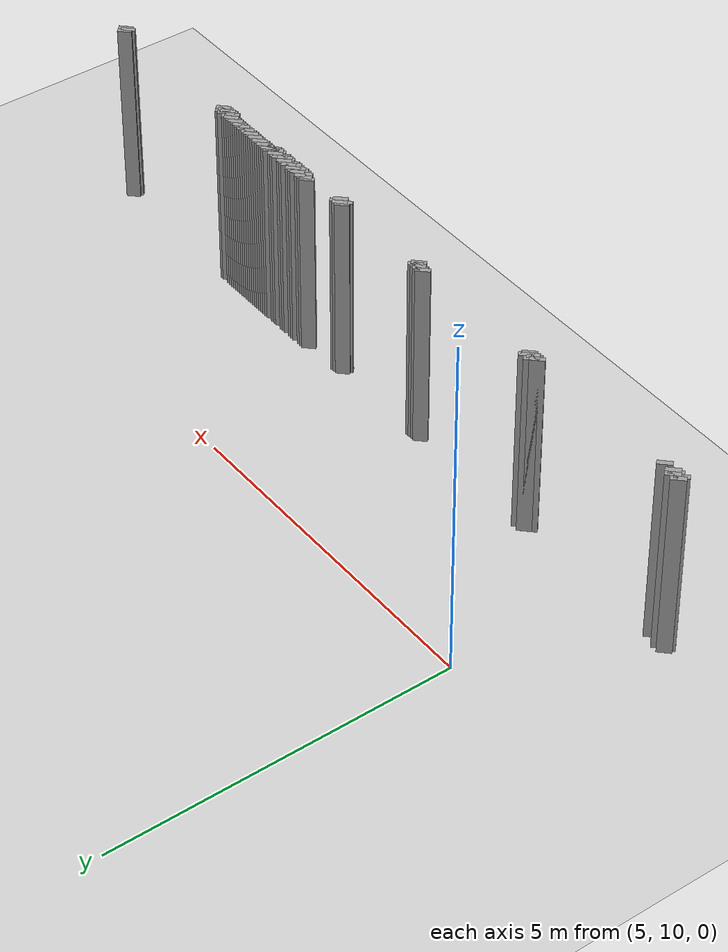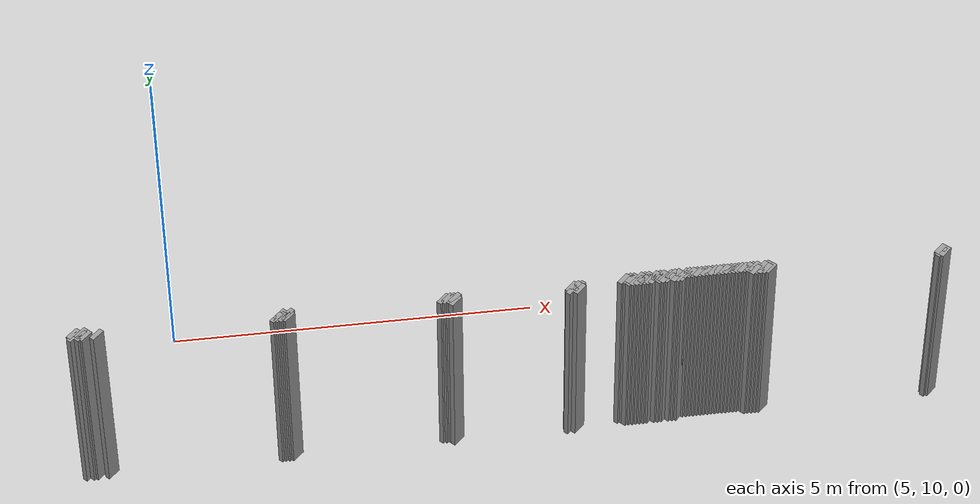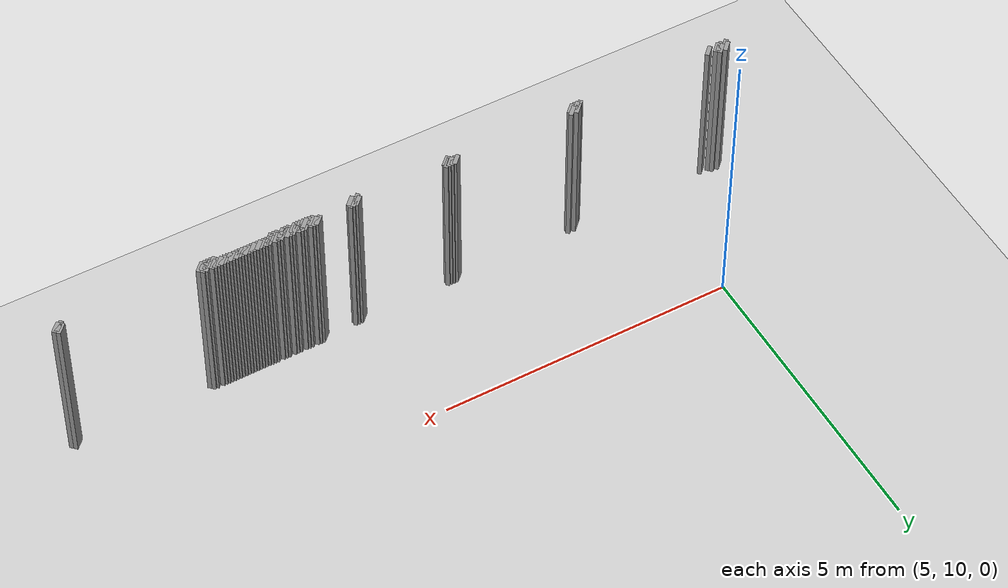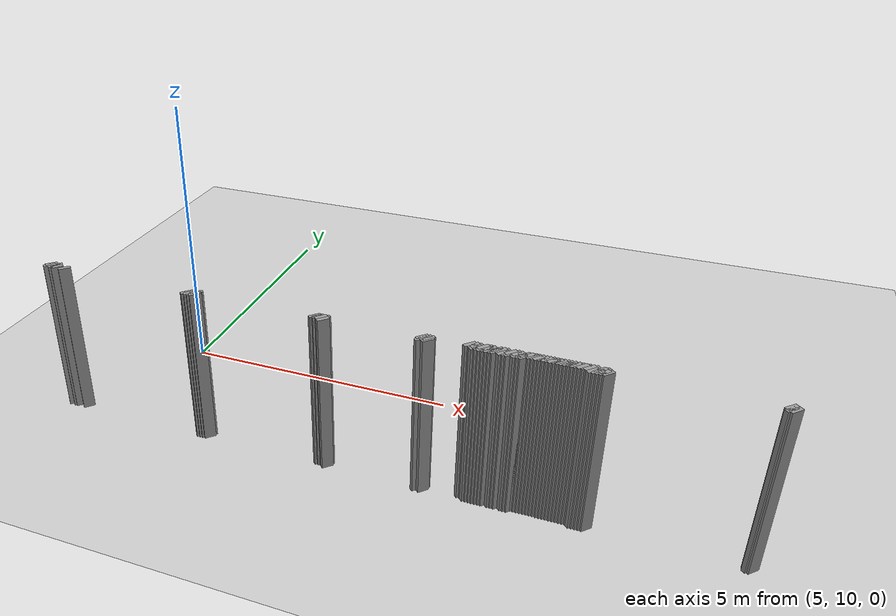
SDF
<sdf version="1.5">
 <world name="default">
  <include><uri>model://ground_plane</uri></include>
  <include><uri>model://sun</uri></include>
  <model name="grey_wall_1323">
   <static>1</static>
   <link name="link">
    <pose>10.95 7.8  1.4 0 0 -0.785398163397</pose>
    <collision name="collision"><geometry><box><size>0.0707106781187 .2  2.8</size></box></geometry></collision>
    <visual name="visual">
     <cast_shadows>0</cast_shadows>
     <geometry><box><size>0.0707106781187 .2  2.8</size></box></geometry>
     <material>
      <script>
       <uri>model://grey_wall/materials/scripts</uri>
       <uri>model://grey_wall/materials/textures</uri>
       <name>vrc/grey_wall</name>
      </script>
     </material>
    </visual>
   </link>
  </model>
  <model name="grey_wall_1324">
   <static>1</static>
   <link name="link">
    <pose>11.0 7.8  1.4 0 0 -0.785398163397</pose>
    <collision name="collision"><geometry><box><size>0.0707106781187 .2  2.8</size></box></geometry></collision>
    <visual name="visual">
     <cast_shadows>0</cast_shadows>
     <geometry><box><size>0.0707106781187 .2  2.8</size></box></geometry>
     <material>
      <script>
       <uri>model://grey_wall/materials/scripts</uri>
       <uri>model://grey_wall/materials/textures</uri>
       <name>vrc/grey_wall</name>
      </script>
     </material>
    </visual>
   </link>
  </model>
  <model name="grey_wall_1325">
   <static>1</static>
   <link name="link">
    <pose>11.05 7.8  1.4 0 0 -0.785398163397</pose>
    <collision name="collision"><geometry><box><size>0.0707106781187 .2  2.8</size></box></geometry></collision>
    <visual name="visual">
     <cast_shadows>0</cast_shadows>
     <geometry><box><size>0.0707106781187 .2  2.8</size></box></geometry>
     <material>
      <script>
       <uri>model://grey_wall/materials/scripts</uri>
       <uri>model://grey_wall/materials/textures</uri>
       <name>vrc/grey_wall</name>
      </script>
     </material>
    </visual>
   </link>
  </model>
  <model name="grey_wall_1326">
   <static>1</static>
   <link name="link">
    <pose>11.15 7.8  1.4 0 0 -0.785398163397</pose>
    <collision name="collision"><geometry><box><size>0.0707106781187 .2  2.8</size></box></geometry></collision>
    <visual name="visual">
     <cast_shadows>0</cast_shadows>
     <geometry><box><size>0.0707106781187 .2  2.8</size></box></geometry>
     <material>
      <script>
       <uri>model://grey_wall/materials/scripts</uri>
       <uri>model://grey_wall/materials/textures</uri>
       <name>vrc/grey_wall</name>
      </script>
     </material>
    </visual>
   </link>
  </model>
  <model name="grey_wall_1327">
   <static>1</static>
   <link name="link">
    <pose>11.2 7.8  1.4 0 0 -0.785398163397</pose>
    <collision name="collision"><geometry><box><size>0.0707106781187 .2  2.8</size></box></geometry></collision>
    <visual name="visual">
     <cast_shadows>0</cast_shadows>
     <geometry><box><size>0.0707106781187 .2  2.8</size></box></geometry>
     <material>
      <script>
       <uri>model://grey_wall/materials/scripts</uri>
       <uri>model://grey_wall/materials/textures</uri>
       <name>vrc/grey_wall</name>
      </script>
     </material>
    </visual>
   </link>
  </model>
  <model name="grey_wall_1328">
   <static>1</static>
   <link name="link">
    <pose>11.25 7.8  1.4 0 0 -0.785398163397</pose>
    <collision name="collision"><geometry><box><size>0.0707106781187 .2  2.8</size></box></geometry></collision>
    <visual name="visual">
     <cast_shadows>0</cast_shadows>
     <geometry><box><size>0.0707106781187 .2  2.8</size></box></geometry>
     <material>
      <script>
       <uri>model://grey_wall/materials/scripts</uri>
       <uri>model://grey_wall/materials/textures</uri>
       <name>vrc/grey_wall</name>
      </script>
     </material>
    </visual>
   </link>
  </model>
  <model name="grey_wall_1329">
   <static>1</static>
   <link name="link">
    <pose>11.35 7.8  1.4 0 0 -0.785398163397</pose>
    <collision name="collision"><geometry><box><size>0.0707106781187 .2  2.8</size></box></geometry></collision>
    <visual name="visual">
     <cast_shadows>0</cast_shadows>
     <geometry><box><size>0.0707106781187 .2  2.8</size></box></geometry>
     <material>
      <script>
       <uri>model://grey_wall/materials/scripts</uri>
       <uri>model://grey_wall/materials/textures</uri>
       <name>vrc/grey_wall</name>
      </script>
     </material>
    </visual>
   </link>
  </model>
  <model name="grey_wall_1330">
   <static>1</static>
   <link name="link">
    <pose>11.4 7.8  1.4 0 0 -0.785398163397</pose>
    <collision name="collision"><geometry><box><size>0.0707106781187 .2  2.8</size></box></geometry></collision>
    <visual name="visual">
     <cast_shadows>0</cast_shadows>
     <geometry><box><size>0.0707106781187 .2  2.8</size></box></geometry>
     <material>
      <script>
       <uri>model://grey_wall/materials/scripts</uri>
       <uri>model://grey_wall/materials/textures</uri>
       <name>vrc/grey_wall</name>
      </script>
     </material>
    </visual>
   </link>
  </model>
  <model name="grey_wall_1331">
   <static>1</static>
   <link name="link">
    <pose>11.45 7.8  1.4 0 0 -0.785398163397</pose>
    <collision name="collision"><geometry><box><size>0.0707106781187 .2  2.8</size></box></geometry></collision>
    <visual name="visual">
     <cast_shadows>0</cast_shadows>
     <geometry><box><size>0.0707106781187 .2  2.8</size></box></geometry>
     <material>
      <script>
       <uri>model://grey_wall/materials/scripts</uri>
       <uri>model://grey_wall/materials/textures</uri>
       <name>vrc/grey_wall</name>
      </script>
     </material>
    </visual>
   </link>
  </model>
  <model name="grey_wall_1332">
   <static>1</static>
   <link name="link">
    <pose>11.55 7.8  1.4 0 0 -0.785398163397</pose>
    <collision name="collision"><geometry><box><size>0.0707106781187 .2  2.8</size></box></geometry></collision>
    <visual name="visual">
     <cast_shadows>0</cast_shadows>
     <geometry><box><size>0.0707106781187 .2  2.8</size></box></geometry>
     <material>
      <script>
       <uri>model://grey_wall/materials/scripts</uri>
       <uri>model://grey_wall/materials/textures</uri>
       <name>vrc/grey_wall</name>
      </script>
     </material>
    </visual>
   </link>
  </model>
  <model name="grey_wall_1333">
   <static>1</static>
   <link name="link">
    <pose>11.6 7.8  1.4 0 0 -0.785398163397</pose>
    <collision name="collision"><geometry><box><size>0.0707106781187 .2  2.8</size></box></geometry></collision>
    <visual name="visual">
     <cast_shadows>0</cast_shadows>
     <geometry><box><size>0.0707106781187 .2  2.8</size></box></geometry>
     <material>
      <script>
       <uri>model://grey_wall/materials/scripts</uri>
       <uri>model://grey_wall/materials/textures</uri>
       <name>vrc/grey_wall</name>
      </script>
     </material>
    </visual>
   </link>
  </model>
  <model name="grey_wall_1334">
   <static>1</static>
   <link name="link">
    <pose>11.65 7.8  1.4 0 0 -0.785398163397</pose>
    <collision name="collision"><geometry><box><size>0.0707106781187 .2  2.8</size></box></geometry></collision>
    <visual name="visual">
     <cast_shadows>0</cast_shadows>
     <geometry><box><size>0.0707106781187 .2  2.8</size></box></geometry>
     <material>
      <script>
       <uri>model://grey_wall/materials/scripts</uri>
       <uri>model://grey_wall/materials/textures</uri>
       <name>vrc/grey_wall</name>
      </script>
     </material>
    </visual>
   </link>
  </model>
  <model name="grey_wall_1335">
   <static>1</static>
   <link name="link">
    <pose>11.75 7.8  1.4 0 0 -0.785398163397</pose>
    <collision name="collision"><geometry><box><size>0.0707106781187 .2  2.8</size></box></geometry></collision>
    <visual name="visual">
     <cast_shadows>0</cast_shadows>
     <geometry><box><size>0.0707106781187 .2  2.8</size></box></geometry>
     <material>
      <script>
       <uri>model://grey_wall/materials/scripts</uri>
       <uri>model://grey_wall/materials/textures</uri>
       <name>vrc/grey_wall</name>
      </script>
     </material>
    </visual>
   </link>
  </model>
  <model name="grey_wall_1336">
   <static>1</static>
   <link name="link">
    <pose>11.8 7.8  1.4 0 0 -0.785398163397</pose>
    <collision name="collision"><geometry><box><size>0.0707106781187 .2  2.8</size></box></geometry></collision>
    <visual name="visual">
     <cast_shadows>0</cast_shadows>
     <geometry><box><size>0.0707106781187 .2  2.8</size></box></geometry>
     <material>
      <script>
       <uri>model://grey_wall/materials/scripts</uri>
       <uri>model://grey_wall/materials/textures</uri>
       <name>vrc/grey_wall</name>
      </script>
     </material>
    </visual>
   </link>
  </model>
  <model name="grey_wall_1337">
   <static>1</static>
   <link name="link">
    <pose>11.85 7.8  1.4 0 0 -0.785398163397</pose>
    <collision name="collision"><geometry><box><size>0.0707106781187 .2  2.8</size></box></geometry></collision>
    <visual name="visual">
     <cast_shadows>0</cast_shadows>
     <geometry><box><size>0.0707106781187 .2  2.8</size></box></geometry>
     <material>
      <script>
       <uri>model://grey_wall/materials/scripts</uri>
       <uri>model://grey_wall/materials/textures</uri>
       <name>vrc/grey_wall</name>
      </script>
     </material>
    </visual>
   </link>
  </model>
  <model name="grey_wall_1338">
   <static>1</static>
   <link name="link">
    <pose>11.9 7.8  1.4 0 0 -0.785398163397</pose>
    <collision name="collision"><geometry><box><size>0.0707106781187 .2  2.8</size></box></geometry></collision>
    <visual name="visual">
     <cast_shadows>0</cast_shadows>
     <geometry><box><size>0.0707106781187 .2  2.8</size></box></geometry>
     <material>
      <script>
       <uri>model://grey_wall/materials/scripts</uri>
       <uri>model://grey_wall/materials/textures</uri>
       <name>vrc/grey_wall</name>
      </script>
     </material>
    </visual>
   </link>
  </model>
  <model name="grey_wall_1339">
   <static>1</static>
   <link name="link">
    <pose>11.95 7.8  1.4 0 0 -0.785398163397</pose>
    <collision name="collision"><geometry><box><size>0.0707106781187 .2  2.8</size></box></geometry></collision>
    <visual name="visual">
     <cast_shadows>0</cast_shadows>
     <geometry><box><size>0.0707106781187 .2  2.8</size></box></geometry>
     <material>
      <script>
       <uri>model://grey_wall/materials/scripts</uri>
       <uri>model://grey_wall/materials/textures</uri>
       <name>vrc/grey_wall</name>
      </script>
     </material>
    </visual>
   </link>
  </model>
  <model name="grey_wall_1340">
   <static>1</static>
   <link name="link">
    <pose>12.0 7.8  1.4 0 0 -0.785398163397</pose>
    <collision name="collision"><geometry><box><size>0.0707106781187 .2  2.8</size></box></geometry></collision>
    <visual name="visual">
     <cast_shadows>0</cast_shadows>
     <geometry><box><size>0.0707106781187 .2  2.8</size></box></geometry>
     <material>
      <script>
       <uri>model://grey_wall/materials/scripts</uri>
       <uri>model://grey_wall/materials/textures</uri>
       <name>vrc/grey_wall</name>
      </script>
     </material>
    </visual>
   </link>
  </model>
  <model name="grey_wall_1341">
   <static>1</static>
   <link name="link">
    <pose>12.05 7.8  1.4 0 0 -0.785398163397</pose>
    <collision name="collision"><geometry><box><size>0.0707106781187 .2  2.8</size></box></geometry></collision>
    <visual name="visual">
     <cast_shadows>0</cast_shadows>
     <geometry><box><size>0.0707106781187 .2  2.8</size></box></geometry>
     <material>
      <script>
       <uri>model://grey_wall/materials/scripts</uri>
       <uri>model://grey_wall/materials/textures</uri>
       <name>vrc/grey_wall</name>
      </script>
     </material>
    </visual>
   </link>
  </model>
  <model name="grey_wall_1342">
   <static>1</static>
   <link name="link">
    <pose>12.1 7.8  1.4 0 0 -0.785398163397</pose>
    <collision name="collision"><geometry><box><size>0.0707106781187 .2  2.8</size></box></geometry></collision>
    <visual name="visual">
     <cast_shadows>0</cast_shadows>
     <geometry><box><size>0.0707106781187 .2  2.8</size></box></geometry>
     <material>
      <script>
       <uri>model://grey_wall/materials/scripts</uri>
       <uri>model://grey_wall/materials/textures</uri>
       <name>vrc/grey_wall</name>
      </script>
     </material>
    </visual>
   </link>
  </model>
  <model name="grey_wall_1343">
   <static>1</static>
   <link name="link">
    <pose>12.15 7.8  1.4 0 0 -0.785398163397</pose>
    <collision name="collision"><geometry><box><size>0.0707106781187 .2  2.8</size></box></geometry></collision>
    <visual name="visual">
     <cast_shadows>0</cast_shadows>
     <geometry><box><size>0.0707106781187 .2  2.8</size></box></geometry>
     <material>
      <script>
       <uri>model://grey_wall/materials/scripts</uri>
       <uri>model://grey_wall/materials/textures</uri>
       <name>vrc/grey_wall</name>
      </script>
     </material>
    </visual>
   </link>
  </model>
  <model name="grey_wall_1344">
   <static>1</static>
   <link name="link">
    <pose>12.2 7.8  1.4 0 0 -0.785398163397</pose>
    <collision name="collision"><geometry><box><size>0.0707106781187 .2  2.8</size></box></geometry></collision>
    <visual name="visual">
     <cast_shadows>0</cast_shadows>
     <geometry><box><size>0.0707106781187 .2  2.8</size></box></geometry>
     <material>
      <script>
       <uri>model://grey_wall/materials/scripts</uri>
       <uri>model://grey_wall/materials/textures</uri>
       <name>vrc/grey_wall</name>
      </script>
     </material>
    </visual>
   </link>
  </model>
  <model name="grey_wall_1345">
   <static>1</static>
   <link name="link">
    <pose>12.25 7.8  1.4 0 0 -0.785398163397</pose>
    <collision name="collision"><geometry><box><size>0.0707106781187 .2  2.8</size></box></geometry></collision>
    <visual name="visual">
     <cast_shadows>0</cast_shadows>
     <geometry><box><size>0.0707106781187 .2  2.8</size></box></geometry>
     <material>
      <script>
       <uri>model://grey_wall/materials/scripts</uri>
       <uri>model://grey_wall/materials/textures</uri>
       <name>vrc/grey_wall</name>
      </script>
     </material>
    </visual>
   </link>
  </model>
  <model name="grey_wall_1346">
   <static>1</static>
   <link name="link">
    <pose>12.3 7.8  1.4 0 0 -0.785398163397</pose>
    <collision name="collision"><geometry><box><size>0.0707106781187 .2  2.8</size></box></geometry></collision>
    <visual name="visual">
     <cast_shadows>0</cast_shadows>
     <geometry><box><size>0.0707106781187 .2  2.8</size></box></geometry>
     <material>
      <script>
       <uri>model://grey_wall/materials/scripts</uri>
       <uri>model://grey_wall/materials/textures</uri>
       <name>vrc/grey_wall</name>
      </script>
     </material>
    </visual>
   </link>
  </model>
  <model name="grey_wall_1347">
   <static>1</static>
   <link name="link">
    <pose>12.35 7.8  1.4 0 0 -0.785398163397</pose>
    <collision name="collision"><geometry><box><size>0.0707106781187 .2  2.8</size></box></geometry></collision>
    <visual name="visual">
     <cast_shadows>0</cast_shadows>
     <geometry><box><size>0.0707106781187 .2  2.8</size></box></geometry>
     <material>
      <script>
       <uri>model://grey_wall/materials/scripts</uri>
       <uri>model://grey_wall/materials/textures</uri>
       <name>vrc/grey_wall</name>
      </script>
     </material>
    </visual>
   </link>
  </model>
  <model name="grey_wall_1348">
   <static>1</static>
   <link name="link">
    <pose>12.4 7.8  1.4 0 0 -0.785398163397</pose>
    <collision name="collision"><geometry><box><size>0.0707106781187 .2  2.8</size></box></geometry></collision>
    <visual name="visual">
     <cast_shadows>0</cast_shadows>
     <geometry><box><size>0.0707106781187 .2  2.8</size></box></geometry>
     <material>
      <script>
       <uri>model://grey_wall/materials/scripts</uri>
       <uri>model://grey_wall/materials/textures</uri>
       <name>vrc/grey_wall</name>
      </script>
     </material>
    </visual>
   </link>
  </model>
  <model name="grey_wall_1349">
   <static>1</static>
   <link name="link">
    <pose>12.45 7.8  1.4 0 0 -0.785398163397</pose>
    <collision name="collision"><geometry><box><size>0.0707106781187 .2  2.8</size></box></geometry></collision>
    <visual name="visual">
     <cast_shadows>0</cast_shadows>
     <geometry><box><size>0.0707106781187 .2  2.8</size></box></geometry>
     <material>
      <script>
       <uri>model://grey_wall/materials/scripts</uri>
       <uri>model://grey_wall/materials/textures</uri>
       <name>vrc/grey_wall</name>
      </script>
     </material>
    </visual>
   </link>
  </model>
  <model name="grey_wall_1350">
   <static>1</static>
   <link name="link">
    <pose>12.5 7.8  1.4 0 0 -0.785398163397</pose>
    <collision name="collision"><geometry><box><size>0.0707106781187 .2  2.8</size></box></geometry></collision>
    <visual name="visual">
     <cast_shadows>0</cast_shadows>
     <geometry><box><size>0.0707106781187 .2  2.8</size></box></geometry>
     <material>
      <script>
       <uri>model://grey_wall/materials/scripts</uri>
       <uri>model://grey_wall/materials/textures</uri>
       <name>vrc/grey_wall</name>
      </script>
     </material>
    </visual>
   </link>
  </model>
  <model name="grey_wall_1351">
   <static>1</static>
   <link name="link">
    <pose>12.55 7.8  1.4 0 0 -0.785398163397</pose>
    <collision name="collision"><geometry><box><size>0.0707106781187 .2  2.8</size></box></geometry></collision>
    <visual name="visual">
     <cast_shadows>0</cast_shadows>
     <geometry><box><size>0.0707106781187 .2  2.8</size></box></geometry>
     <material>
      <script>
       <uri>model://grey_wall/materials/scripts</uri>
       <uri>model://grey_wall/materials/textures</uri>
       <name>vrc/grey_wall</name>
      </script>
     </material>
    </visual>
   </link>
  </model>
  <model name="grey_wall_1352">
   <static>1</static>
   <link name="link">
    <pose>12.6 7.8  1.4 0 0 -0.785398163397</pose>
    <collision name="collision"><geometry><box><size>0.0707106781187 .2  2.8</size></box></geometry></collision>
    <visual name="visual">
     <cast_shadows>0</cast_shadows>
     <geometry><box><size>0.0707106781187 .2  2.8</size></box></geometry>
     <material>
      <script>
       <uri>model://grey_wall/materials/scripts</uri>
       <uri>model://grey_wall/materials/textures</uri>
       <name>vrc/grey_wall</name>
      </script>
     </material>
    </visual>
   </link>
  </model>
  <model name="grey_wall_1353">
   <static>1</static>
   <link name="link">
    <pose>12.65 7.8  1.4 0 0 -0.785398163397</pose>
    <collision name="collision"><geometry><box><size>0.0707106781187 .2  2.8</size></box></geometry></collision>
    <visual name="visual">
     <cast_shadows>0</cast_shadows>
     <geometry><box><size>0.0707106781187 .2  2.8</size></box></geometry>
     <material>
      <script>
       <uri>model://grey_wall/materials/scripts</uri>
       <uri>model://grey_wall/materials/textures</uri>
       <name>vrc/grey_wall</name>
      </script>
     </material>
    </visual>
   </link>
  </model>
  <model name="grey_wall_1354">
   <static>1</static>
   <link name="link">
    <pose>12.7 7.8  1.4 0 0 -0.785398163397</pose>
    <collision name="collision"><geometry><box><size>0.0707106781187 .2  2.8</size></box></geometry></collision>
    <visual name="visual">
     <cast_shadows>0</cast_shadows>
     <geometry><box><size>0.0707106781187 .2  2.8</size></box></geometry>
     <material>
      <script>
       <uri>model://grey_wall/materials/scripts</uri>
       <uri>model://grey_wall/materials/textures</uri>
       <name>vrc/grey_wall</name>
      </script>
     </material>
    </visual>
   </link>
  </model>
  <model name="grey_wall_1355">
   <static>1</static>
   <link name="link">
    <pose>12.8 7.8  1.4 0 0 -0.785398163397</pose>
    <collision name="collision"><geometry><box><size>0.0707106781187 .2  2.8</size></box></geometry></collision>
    <visual name="visual">
     <cast_shadows>0</cast_shadows>
     <geometry><box><size>0.0707106781187 .2  2.8</size></box></geometry>
     <material>
      <script>
       <uri>model://grey_wall/materials/scripts</uri>
       <uri>model://grey_wall/materials/textures</uri>
       <name>vrc/grey_wall</name>
      </script>
     </material>
    </visual>
   </link>
  </model>
  <model name="grey_wall_1356">
   <static>1</static>
   <link name="link">
    <pose>12.85 7.8  1.4 0 0 -0.785398163397</pose>
    <collision name="collision"><geometry><box><size>0.0707106781187 .2  2.8</size></box></geometry></collision>
    <visual name="visual">
     <cast_shadows>0</cast_shadows>
     <geometry><box><size>0.0707106781187 .2  2.8</size></box></geometry>
     <material>
      <script>
       <uri>model://grey_wall/materials/scripts</uri>
       <uri>model://grey_wall/materials/textures</uri>
       <name>vrc/grey_wall</name>
      </script>
     </material>
    </visual>
   </link>
  </model>
  <model name="grey_wall_1357">
   <static>1</static>
   <link name="link">
    <pose>15.2 7.8  1.4 0 0 -0.785398163397</pose>
    <collision name="collision"><geometry><box><size>0.0707106781187 .2  2.8</size></box></geometry></collision>
    <visual name="visual">
     <cast_shadows>0</cast_shadows>
     <geometry><box><size>0.0707106781187 .2  2.8</size></box></geometry>
     <material>
      <script>
       <uri>model://grey_wall/materials/scripts</uri>
       <uri>model://grey_wall/materials/textures</uri>
       <name>vrc/grey_wall</name>
      </script>
     </material>
    </visual>
   </link>
  </model>
  <model name="grey_wall_1358">
   <static>1</static>
   <link name="link">
    <pose>3.7 7.75  1.4 0 0 -0.785398163397</pose>
    <collision name="collision"><geometry><box><size>0.0707106781187 .2  2.8</size></box></geometry></collision>
    <visual name="visual">
     <cast_shadows>0</cast_shadows>
     <geometry><box><size>0.0707106781187 .2  2.8</size></box></geometry>
     <material>
      <script>
       <uri>model://grey_wall/materials/scripts</uri>
       <uri>model://grey_wall/materials/textures</uri>
       <name>vrc/grey_wall</name>
      </script>
     </material>
    </visual>
   </link>
  </model>
  <model name="grey_wall_1359">
   <static>1</static>
   <link name="link">
    <pose>3.8 7.75  1.4 0 0 -0.785398163397</pose>
    <collision name="collision"><geometry><box><size>0.0707106781187 .2  2.8</size></box></geometry></collision>
    <visual name="visual">
     <cast_shadows>0</cast_shadows>
     <geometry><box><size>0.0707106781187 .2  2.8</size></box></geometry>
     <material>
      <script>
       <uri>model://grey_wall/materials/scripts</uri>
       <uri>model://grey_wall/materials/textures</uri>
       <name>vrc/grey_wall</name>
      </script>
     </material>
    </visual>
   </link>
  </model>
  <model name="grey_wall_1360">
   <static>1</static>
   <link name="link">
    <pose>6.4 7.75  1.4 0 0 -0.785398163397</pose>
    <collision name="collision"><geometry><box><size>0.0707106781187 .2  2.8</size></box></geometry></collision>
    <visual name="visual">
     <cast_shadows>0</cast_shadows>
     <geometry><box><size>0.0707106781187 .2  2.8</size></box></geometry>
     <material>
      <script>
       <uri>model://grey_wall/materials/scripts</uri>
       <uri>model://grey_wall/materials/textures</uri>
       <name>vrc/grey_wall</name>
      </script>
     </material>
    </visual>
   </link>
  </model>
  <model name="grey_wall_1361">
   <static>1</static>
   <link name="link">
    <pose>6.5 7.75  1.4 0 0 -0.785398163397</pose>
    <collision name="collision"><geometry><box><size>0.0707106781187 .2  2.8</size></box></geometry></collision>
    <visual name="visual">
     <cast_shadows>0</cast_shadows>
     <geometry><box><size>0.0707106781187 .2  2.8</size></box></geometry>
     <material>
      <script>
       <uri>model://grey_wall/materials/scripts</uri>
       <uri>model://grey_wall/materials/textures</uri>
       <name>vrc/grey_wall</name>
      </script>
     </material>
    </visual>
   </link>
  </model>
  <model name="grey_wall_1362">
   <static>1</static>
   <link name="link">
    <pose>8.55 7.75  1.4 0 0 -0.785398163397</pose>
    <collision name="collision"><geometry><box><size>0.0707106781187 .2  2.8</size></box></geometry></collision>
    <visual name="visual">
     <cast_shadows>0</cast_shadows>
     <geometry><box><size>0.0707106781187 .2  2.8</size></box></geometry>
     <material>
      <script>
       <uri>model://grey_wall/materials/scripts</uri>
       <uri>model://grey_wall/materials/textures</uri>
       <name>vrc/grey_wall</name>
      </script>
     </material>
    </visual>
   </link>
  </model>
  <model name="grey_wall_1363">
   <static>1</static>
   <link name="link">
    <pose>8.6 7.75  1.4 0 0 -0.785398163397</pose>
    <collision name="collision"><geometry><box><size>0.0707106781187 .2  2.8</size></box></geometry></collision>
    <visual name="visual">
     <cast_shadows>0</cast_shadows>
     <geometry><box><size>0.0707106781187 .2  2.8</size></box></geometry>
     <material>
      <script>
       <uri>model://grey_wall/materials/scripts</uri>
       <uri>model://grey_wall/materials/textures</uri>
       <name>vrc/grey_wall</name>
      </script>
     </material>
    </visual>
   </link>
  </model>
  <model name="grey_wall_1364">
   <static>1</static>
   <link name="link">
    <pose>8.65 7.75  1.4 0 0 -0.785398163397</pose>
    <collision name="collision"><geometry><box><size>0.0707106781187 .2  2.8</size></box></geometry></collision>
    <visual name="visual">
     <cast_shadows>0</cast_shadows>
     <geometry><box><size>0.0707106781187 .2  2.8</size></box></geometry>
     <material>
      <script>
       <uri>model://grey_wall/materials/scripts</uri>
       <uri>model://grey_wall/materials/textures</uri>
       <name>vrc/grey_wall</name>
      </script>
     </material>
    </visual>
   </link>
  </model>
  <model name="grey_wall_1365">
   <static>1</static>
   <link name="link">
    <pose>8.7 7.75  1.4 0 0 -0.785398163397</pose>
    <collision name="collision"><geometry><box><size>0.0707106781187 .2  2.8</size></box></geometry></collision>
    <visual name="visual">
     <cast_shadows>0</cast_shadows>
     <geometry><box><size>0.0707106781187 .2  2.8</size></box></geometry>
     <material>
      <script>
       <uri>model://grey_wall/materials/scripts</uri>
       <uri>model://grey_wall/materials/textures</uri>
       <name>vrc/grey_wall</name>
      </script>
     </material>
    </visual>
   </link>
  </model>
  <model name="grey_wall_1366">
   <static>1</static>
   <link name="link">
    <pose>10.25 7.75  1.4 0 0 -0.785398163397</pose>
    <collision name="collision"><geometry><box><size>0.0707106781187 .2  2.8</size></box></geometry></collision>
    <visual name="visual">
     <cast_shadows>0</cast_shadows>
     <geometry><box><size>0.0707106781187 .2  2.8</size></box></geometry>
     <material>
      <script>
       <uri>model://grey_wall/materials/scripts</uri>
       <uri>model://grey_wall/materials/textures</uri>
       <name>vrc/grey_wall</name>
      </script>
     </material>
    </visual>
   </link>
  </model>
  <model name="grey_wall_1367">
   <static>1</static>
   <link name="link">
    <pose>10.3 7.75  1.4 0 0 -0.785398163397</pose>
    <collision name="collision"><geometry><box><size>0.0707106781187 .2  2.8</size></box></geometry></collision>
    <visual name="visual">
     <cast_shadows>0</cast_shadows>
     <geometry><box><size>0.0707106781187 .2  2.8</size></box></geometry>
     <material>
      <script>
       <uri>model://grey_wall/materials/scripts</uri>
       <uri>model://grey_wall/materials/textures</uri>
       <name>vrc/grey_wall</name>
      </script>
     </material>
    </visual>
   </link>
  </model>
  <model name="grey_wall_1368">
   <static>1</static>
   <link name="link">
    <pose>10.35 7.75  1.4 0 0 -0.785398163397</pose>
    <collision name="collision"><geometry><box><size>0.0707106781187 .2  2.8</size></box></geometry></collision>
    <visual name="visual">
     <cast_shadows>0</cast_shadows>
     <geometry><box><size>0.0707106781187 .2  2.8</size></box></geometry>
     <material>
      <script>
       <uri>model://grey_wall/materials/scripts</uri>
       <uri>model://grey_wall/materials/textures</uri>
       <name>vrc/grey_wall</name>
      </script>
     </material>
    </visual>
   </link>
  </model>
  <model name="grey_wall_1369">
   <static>1</static>
   <link name="link">
    <pose>11.05 7.75  1.4 0 0 -0.785398163397</pose>
    <collision name="collision"><geometry><box><size>0.0707106781187 .2  2.8</size></box></geometry></collision>
    <visual name="visual">
     <cast_shadows>0</cast_shadows>
     <geometry><box><size>0.0707106781187 .2  2.8</size></box></geometry>
     <material>
      <script>
       <uri>model://grey_wall/materials/scripts</uri>
       <uri>model://grey_wall/materials/textures</uri>
       <name>vrc/grey_wall</name>
      </script>
     </material>
    </visual>
   </link>
  </model>
  <model name="grey_wall_1370">
   <static>1</static>
   <link name="link">
    <pose>11.1 7.75  1.4 0 0 -0.785398163397</pose>
    <collision name="collision"><geometry><box><size>0.0707106781187 .2  2.8</size></box></geometry></collision>
    <visual name="visual">
     <cast_shadows>0</cast_shadows>
     <geometry><box><size>0.0707106781187 .2  2.8</size></box></geometry>
     <material>
      <script>
       <uri>model://grey_wall/materials/scripts</uri>
       <uri>model://grey_wall/materials/textures</uri>
       <name>vrc/grey_wall</name>
      </script>
     </material>
    </visual>
   </link>
  </model>
  <model name="grey_wall_1371">
   <static>1</static>
   <link name="link">
    <pose>11.15 7.75  1.4 0 0 -0.785398163397</pose>
    <collision name="collision"><geometry><box><size>0.0707106781187 .2  2.8</size></box></geometry></collision>
    <visual name="visual">
     <cast_shadows>0</cast_shadows>
     <geometry><box><size>0.0707106781187 .2  2.8</size></box></geometry>
     <material>
      <script>
       <uri>model://grey_wall/materials/scripts</uri>
       <uri>model://grey_wall/materials/textures</uri>
       <name>vrc/grey_wall</name>
      </script>
     </material>
    </visual>
   </link>
  </model>
  <model name="grey_wall_1372">
   <static>1</static>
   <link name="link">
    <pose>11.2 7.75  1.4 0 0 -0.785398163397</pose>
    <collision name="collision"><geometry><box><size>0.0707106781187 .2  2.8</size></box></geometry></collision>
    <visual name="visual">
     <cast_shadows>0</cast_shadows>
     <geometry><box><size>0.0707106781187 .2  2.8</size></box></geometry>
     <material>
      <script>
       <uri>model://grey_wall/materials/scripts</uri>
       <uri>model://grey_wall/materials/textures</uri>
       <name>vrc/grey_wall</name>
      </script>
     </material>
    </visual>
   </link>
  </model>
  <model name="grey_wall_1373">
   <static>1</static>
   <link name="link">
    <pose>11.25 7.75  1.4 0 0 -0.785398163397</pose>
    <collision name="collision"><geometry><box><size>0.0707106781187 .2  2.8</size></box></geometry></collision>
    <visual name="visual">
     <cast_shadows>0</cast_shadows>
     <geometry><box><size>0.0707106781187 .2  2.8</size></box></geometry>
     <material>
      <script>
       <uri>model://grey_wall/materials/scripts</uri>
       <uri>model://grey_wall/materials/textures</uri>
       <name>vrc/grey_wall</name>
      </script>
     </material>
    </visual>
   </link>
  </model>
  <model name="grey_wall_1374">
   <static>1</static>
   <link name="link">
    <pose>11.3 7.75  1.4 0 0 -0.785398163397</pose>
    <collision name="collision"><geometry><box><size>0.0707106781187 .2  2.8</size></box></geometry></collision>
    <visual name="visual">
     <cast_shadows>0</cast_shadows>
     <geometry><box><size>0.0707106781187 .2  2.8</size></box></geometry>
     <material>
      <script>
       <uri>model://grey_wall/materials/scripts</uri>
       <uri>model://grey_wall/materials/textures</uri>
       <name>vrc/grey_wall</name>
      </script>
     </material>
    </visual>
   </link>
  </model>
  <model name="grey_wall_1375">
   <static>1</static>
   <link name="link">
    <pose>11.35 7.75  1.4 0 0 -0.785398163397</pose>
    <collision name="collision"><geometry><box><size>0.0707106781187 .2  2.8</size></box></geometry></collision>
    <visual name="visual">
     <cast_shadows>0</cast_shadows>
     <geometry><box><size>0.0707106781187 .2  2.8</size></box></geometry>
     <material>
      <script>
       <uri>model://grey_wall/materials/scripts</uri>
       <uri>model://grey_wall/materials/textures</uri>
       <name>vrc/grey_wall</name>
      </script>
     </material>
    </visual>
   </link>
  </model>
  <model name="grey_wall_1376">
   <static>1</static>
   <link name="link">
    <pose>11.45 7.75  1.4 0 0 -0.785398163397</pose>
    <collision name="collision"><geometry><box><size>0.0707106781187 .2  2.8</size></box></geometry></collision>
    <visual name="visual">
     <cast_shadows>0</cast_shadows>
     <geometry><box><size>0.0707106781187 .2  2.8</size></box></geometry>
     <material>
      <script>
       <uri>model://grey_wall/materials/scripts</uri>
       <uri>model://grey_wall/materials/textures</uri>
       <name>vrc/grey_wall</name>
      </script>
     </material>
    </visual>
   </link>
  </model>
  <model name="grey_wall_1377">
   <static>1</static>
   <link name="link">
    <pose>11.5 7.75  1.4 0 0 -0.785398163397</pose>
    <collision name="collision"><geometry><box><size>0.0707106781187 .2  2.8</size></box></geometry></collision>
    <visual name="visual">
     <cast_shadows>0</cast_shadows>
     <geometry><box><size>0.0707106781187 .2  2.8</size></box></geometry>
     <material>
      <script>
       <uri>model://grey_wall/materials/scripts</uri>
       <uri>model://grey_wall/materials/textures</uri>
       <name>vrc/grey_wall</name>
      </script>
     </material>
    </visual>
   </link>
  </model>
  <model name="grey_wall_1378">
   <static>1</static>
   <link name="link">
    <pose>11.55 7.75  1.4 0 0 -0.785398163397</pose>
    <collision name="collision"><geometry><box><size>0.0707106781187 .2  2.8</size></box></geometry></collision>
    <visual name="visual">
     <cast_shadows>0</cast_shadows>
     <geometry><box><size>0.0707106781187 .2  2.8</size></box></geometry>
     <material>
      <script>
       <uri>model://grey_wall/materials/scripts</uri>
       <uri>model://grey_wall/materials/textures</uri>
       <name>vrc/grey_wall</name>
      </script>
     </material>
    </visual>
   </link>
  </model>
  <model name="grey_wall_1379">
   <static>1</static>
   <link name="link">
    <pose>11.65 7.75  1.4 0 0 -0.785398163397</pose>
    <collision name="collision"><geometry><box><size>0.0707106781187 .2  2.8</size></box></geometry></collision>
    <visual name="visual">
     <cast_shadows>0</cast_shadows>
     <geometry><box><size>0.0707106781187 .2  2.8</size></box></geometry>
     <material>
      <script>
       <uri>model://grey_wall/materials/scripts</uri>
       <uri>model://grey_wall/materials/textures</uri>
       <name>vrc/grey_wall</name>
      </script>
     </material>
    </visual>
   </link>
  </model>
  <model name="grey_wall_1380">
   <static>1</static>
   <link name="link">
    <pose>11.7 7.75  1.4 0 0 -0.785398163397</pose>
    <collision name="collision"><geometry><box><size>0.0707106781187 .2  2.8</size></box></geometry></collision>
    <visual name="visual">
     <cast_shadows>0</cast_shadows>
     <geometry><box><size>0.0707106781187 .2  2.8</size></box></geometry>
     <material>
      <script>
       <uri>model://grey_wall/materials/scripts</uri>
       <uri>model://grey_wall/materials/textures</uri>
       <name>vrc/grey_wall</name>
      </script>
     </material>
    </visual>
   </link>
  </model>
  <model name="grey_wall_1381">
   <static>1</static>
   <link name="link">
    <pose>11.75 7.75  1.4 0 0 -0.785398163397</pose>
    <collision name="collision"><geometry><box><size>0.0707106781187 .2  2.8</size></box></geometry></collision>
    <visual name="visual">
     <cast_shadows>0</cast_shadows>
     <geometry><box><size>0.0707106781187 .2  2.8</size></box></geometry>
     <material>
      <script>
       <uri>model://grey_wall/materials/scripts</uri>
       <uri>model://grey_wall/materials/textures</uri>
       <name>vrc/grey_wall</name>
      </script>
     </material>
    </visual>
   </link>
  </model>
  <model name="grey_wall_1382">
   <static>1</static>
   <link name="link">
    <pose>12.7 7.75  1.4 0 0 -0.785398163397</pose>
    <collision name="collision"><geometry><box><size>0.0707106781187 .2  2.8</size></box></geometry></collision>
    <visual name="visual">
     <cast_shadows>0</cast_shadows>
     <geometry><box><size>0.0707106781187 .2  2.8</size></box></geometry>
     <material>
      <script>
       <uri>model://grey_wall/materials/scripts</uri>
       <uri>model://grey_wall/materials/textures</uri>
       <name>vrc/grey_wall</name>
      </script>
     </material>
    </visual>
   </link>
  </model>
  <model name="grey_wall_1383">
   <static>1</static>
   <link name="link">
    <pose>12.75 7.75  1.4 0 0 -0.785398163397</pose>
    <collision name="collision"><geometry><box><size>0.0707106781187 .2  2.8</size></box></geometry></collision>
    <visual name="visual">
     <cast_shadows>0</cast_shadows>
     <geometry><box><size>0.0707106781187 .2  2.8</size></box></geometry>
     <material>
      <script>
       <uri>model://grey_wall/materials/scripts</uri>
       <uri>model://grey_wall/materials/textures</uri>
       <name>vrc/grey_wall</name>
      </script>
     </material>
    </visual>
   </link>
  </model>
  <model name="grey_wall_1384">
   <static>1</static>
   <link name="link">
    <pose>12.8 7.75  1.4 0 0 -0.785398163397</pose>
    <collision name="collision"><geometry><box><size>0.0707106781187 .2  2.8</size></box></geometry></collision>
    <visual name="visual">
     <cast_shadows>0</cast_shadows>
     <geometry><box><size>0.0707106781187 .2  2.8</size></box></geometry>
     <material>
      <script>
       <uri>model://grey_wall/materials/scripts</uri>
       <uri>model://grey_wall/materials/textures</uri>
       <name>vrc/grey_wall</name>
      </script>
     </material>
    </visual>
   </link>
  </model>
  <model name="grey_wall_1385">
   <static>1</static>
   <link name="link">
    <pose>12.85 7.75  1.4 0 0 -0.785398163397</pose>
    <collision name="collision"><geometry><box><size>0.0707106781187 .2  2.8</size></box></geometry></collision>
    <visual name="visual">
     <cast_shadows>0</cast_shadows>
     <geometry><box><size>0.0707106781187 .2  2.8</size></box></geometry>
     <material>
      <script>
       <uri>model://grey_wall/materials/scripts</uri>
       <uri>model://grey_wall/materials/textures</uri>
       <name>vrc/grey_wall</name>
      </script>
     </material>
    </visual>
   </link>
  </model>
  <model name="grey_wall_1386">
   <static>1</static>
   <link name="link">
    <pose>12.9 7.75  1.4 0 0 -0.785398163397</pose>
    <collision name="collision"><geometry><box><size>0.0707106781187 .2  2.8</size></box></geometry></collision>
    <visual name="visual">
     <cast_shadows>0</cast_shadows>
     <geometry><box><size>0.0707106781187 .2  2.8</size></box></geometry>
     <material>
      <script>
       <uri>model://grey_wall/materials/scripts</uri>
       <uri>model://grey_wall/materials/textures</uri>
       <name>vrc/grey_wall</name>
      </script>
     </material>
    </visual>
   </link>
  </model>
  <model name="grey_wall_1387">
   <static>1</static>
   <link name="link">
    <pose>15.2 7.75  1.4 0 0 -0.785398163397</pose>
    <collision name="collision"><geometry><box><size>0.0707106781187 .2  2.8</size></box></geometry></collision>
    <visual name="visual">
     <cast_shadows>0</cast_shadows>
     <geometry><box><size>0.0707106781187 .2  2.8</size></box></geometry>
     <material>
      <script>
       <uri>model://grey_wall/materials/scripts</uri>
       <uri>model://grey_wall/materials/textures</uri>
       <name>vrc/grey_wall</name>
      </script>
     </material>
    </visual>
   </link>
  </model>
  <model name="grey_wall_1388">
   <static>1</static>
   <link name="link">
    <pose>15.25 7.75  1.4 0 0 -0.785398163397</pose>
    <collision name="collision"><geometry><box><size>0.0707106781187 .2  2.8</size></box></geometry></collision>
    <visual name="visual">
     <cast_shadows>0</cast_shadows>
     <geometry><box><size>0.0707106781187 .2  2.8</size></box></geometry>
     <material>
      <script>
       <uri>model://grey_wall/materials/scripts</uri>
       <uri>model://grey_wall/materials/textures</uri>
       <name>vrc/grey_wall</name>
      </script>
     </material>
    </visual>
   </link>
  </model>
  <model name="grey_wall_1389">
   <static>1</static>
   <link name="link">
    <pose>3.7 7.7  1.4 0 0 -0.785398163397</pose>
    <collision name="collision"><geometry><box><size>0.0707106781187 .2  2.8</size></box></geometry></collision>
    <visual name="visual">
     <cast_shadows>0</cast_shadows>
     <geometry><box><size>0.0707106781187 .2  2.8</size></box></geometry>
     <material>
      <script>
       <uri>model://grey_wall/materials/scripts</uri>
       <uri>model://grey_wall/materials/textures</uri>
       <name>vrc/grey_wall</name>
      </script>
     </material>
    </visual>
   </link>
  </model>
  <model name="grey_wall_1390">
   <static>1</static>
   <link name="link">
    <pose>3.8 7.7  1.4 0 0 -0.785398163397</pose>
    <collision name="collision"><geometry><box><size>0.0707106781187 .2  2.8</size></box></geometry></collision>
    <visual name="visual">
     <cast_shadows>0</cast_shadows>
     <geometry><box><size>0.0707106781187 .2  2.8</size></box></geometry>
     <material>
      <script>
       <uri>model://grey_wall/materials/scripts</uri>
       <uri>model://grey_wall/materials/textures</uri>
       <name>vrc/grey_wall</name>
      </script>
     </material>
    </visual>
   </link>
  </model>
  <model name="grey_wall_1391">
   <static>1</static>
   <link name="link">
    <pose>3.85 7.7  1.4 0 0 -0.785398163397</pose>
    <collision name="collision"><geometry><box><size>0.0707106781187 .2  2.8</size></box></geometry></collision>
    <visual name="visual">
     <cast_shadows>0</cast_shadows>
     <geometry><box><size>0.0707106781187 .2  2.8</size></box></geometry>
     <material>
      <script>
       <uri>model://grey_wall/materials/scripts</uri>
       <uri>model://grey_wall/materials/textures</uri>
       <name>vrc/grey_wall</name>
      </script>
     </material>
    </visual>
   </link>
  </model>
  <model name="grey_wall_1392">
   <static>1</static>
   <link name="link">
    <pose>4.0 7.7  1.4 0 0 -0.785398163397</pose>
    <collision name="collision"><geometry><box><size>0.0707106781187 .2  2.8</size></box></geometry></collision>
    <visual name="visual">
     <cast_shadows>0</cast_shadows>
     <geometry><box><size>0.0707106781187 .2  2.8</size></box></geometry>
     <material>
      <script>
       <uri>model://grey_wall/materials/scripts</uri>
       <uri>model://grey_wall/materials/textures</uri>
       <name>vrc/grey_wall</name>
      </script>
     </material>
    </visual>
   </link>
  </model>
  <model name="grey_wall_1393">
   <static>1</static>
   <link name="link">
    <pose>6.35 7.7  1.4 0 0 -0.785398163397</pose>
    <collision name="collision"><geometry><box><size>0.0707106781187 .2  2.8</size></box></geometry></collision>
    <visual name="visual">
     <cast_shadows>0</cast_shadows>
     <geometry><box><size>0.0707106781187 .2  2.8</size></box></geometry>
     <material>
      <script>
       <uri>model://grey_wall/materials/scripts</uri>
       <uri>model://grey_wall/materials/textures</uri>
       <name>vrc/grey_wall</name>
      </script>
     </material>
    </visual>
   </link>
  </model>
  <model name="grey_wall_1394">
   <static>1</static>
   <link name="link">
    <pose>6.4 7.7  1.4 0 0 -0.785398163397</pose>
    <collision name="collision"><geometry><box><size>0.0707106781187 .2  2.8</size></box></geometry></collision>
    <visual name="visual">
     <cast_shadows>0</cast_shadows>
     <geometry><box><size>0.0707106781187 .2  2.8</size></box></geometry>
     <material>
      <script>
       <uri>model://grey_wall/materials/scripts</uri>
       <uri>model://grey_wall/materials/textures</uri>
       <name>vrc/grey_wall</name>
      </script>
     </material>
    </visual>
   </link>
  </model>
  <model name="grey_wall_1395">
   <static>1</static>
   <link name="link">
    <pose>6.45 7.7  1.4 0 0 -0.785398163397</pose>
    <collision name="collision"><geometry><box><size>0.0707106781187 .2  2.8</size></box></geometry></collision>
    <visual name="visual">
     <cast_shadows>0</cast_shadows>
     <geometry><box><size>0.0707106781187 .2  2.8</size></box></geometry>
     <material>
      <script>
       <uri>model://grey_wall/materials/scripts</uri>
       <uri>model://grey_wall/materials/textures</uri>
       <name>vrc/grey_wall</name>
      </script>
     </material>
    </visual>
   </link>
  </model>
  <model name="grey_wall_1396">
   <static>1</static>
   <link name="link">
    <pose>6.5 7.7  1.4 0 0 -0.785398163397</pose>
    <collision name="collision"><geometry><box><size>0.0707106781187 .2  2.8</size></box></geometry></collision>
    <visual name="visual">
     <cast_shadows>0</cast_shadows>
     <geometry><box><size>0.0707106781187 .2  2.8</size></box></geometry>
     <material>
      <script>
       <uri>model://grey_wall/materials/scripts</uri>
       <uri>model://grey_wall/materials/textures</uri>
       <name>vrc/grey_wall</name>
      </script>
     </material>
    </visual>
   </link>
  </model>
  <model name="grey_wall_1397">
   <static>1</static>
   <link name="link">
    <pose>8.7 7.7  1.4 0 0 -0.785398163397</pose>
    <collision name="collision"><geometry><box><size>0.0707106781187 .2  2.8</size></box></geometry></collision>
    <visual name="visual">
     <cast_shadows>0</cast_shadows>
     <geometry><box><size>0.0707106781187 .2  2.8</size></box></geometry>
     <material>
      <script>
       <uri>model://grey_wall/materials/scripts</uri>
       <uri>model://grey_wall/materials/textures</uri>
       <name>vrc/grey_wall</name>
      </script>
     </material>
    </visual>
   </link>
  </model>
  <model name="grey_wall_1398">
   <static>1</static>
   <link name="link">
    <pose>10.25 7.7  1.4 0 0 -0.785398163397</pose>
    <collision name="collision"><geometry><box><size>0.0707106781187 .2  2.8</size></box></geometry></collision>
    <visual name="visual">
     <cast_shadows>0</cast_shadows>
     <geometry><box><size>0.0707106781187 .2  2.8</size></box></geometry>
     <material>
      <script>
       <uri>model://grey_wall/materials/scripts</uri>
       <uri>model://grey_wall/materials/textures</uri>
       <name>vrc/grey_wall</name>
      </script>
     </material>
    </visual>
   </link>
  </model>
  <model name="grey_wall_1399">
   <static>1</static>
   <link name="link">
    <pose>10.35 7.7  1.4 0 0 -0.785398163397</pose>
    <collision name="collision"><geometry><box><size>0.0707106781187 .2  2.8</size></box></geometry></collision>
    <visual name="visual">
     <cast_shadows>0</cast_shadows>
     <geometry><box><size>0.0707106781187 .2  2.8</size></box></geometry>
     <material>
      <script>
       <uri>model://grey_wall/materials/scripts</uri>
       <uri>model://grey_wall/materials/textures</uri>
       <name>vrc/grey_wall</name>
      </script>
     </material>
    </visual>
   </link>
  </model>
 </world>
</sdf>
